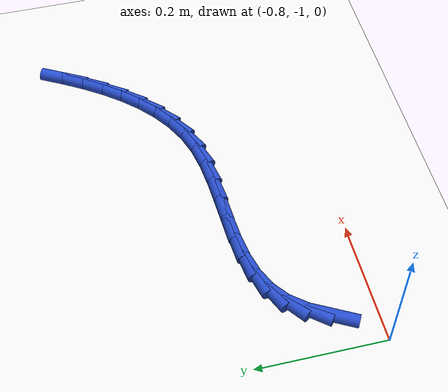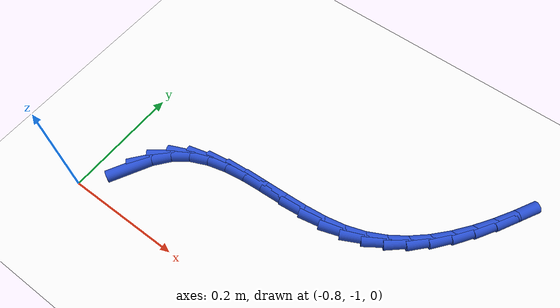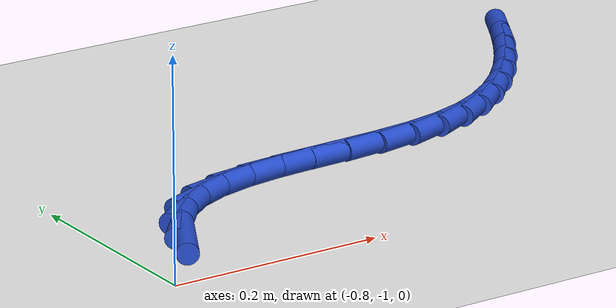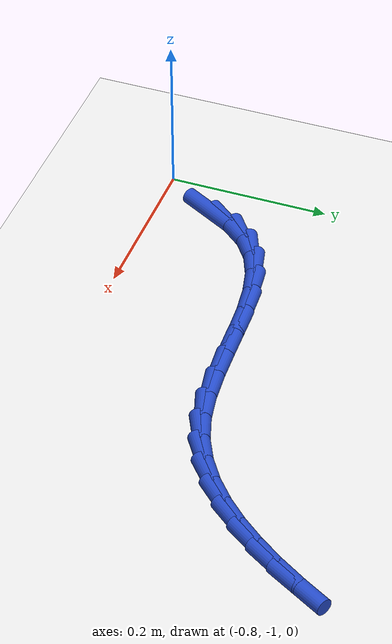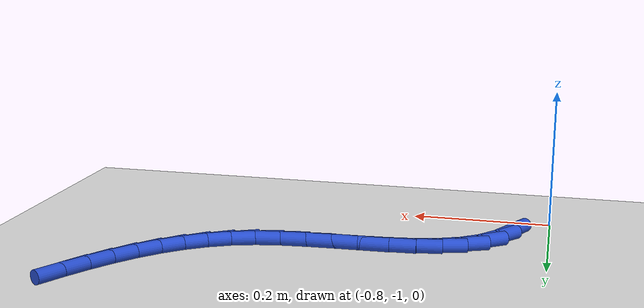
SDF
<sdf version="1.6">
 <world name="default">
  <model name="ground_plane">
   <static>1</static>
   <link name="link">
    <collision name="collision">
     <geometry><plane><normal>0 0 1</normal><size>100 100</size></plane></geometry>
     <surface><friction><ode><mu>100</mu><mu2>50</mu2></ode></friction></surface>
    </collision>
    <visual name="visual">
     <cast_shadows>0</cast_shadows>
     <geometry><plane><normal>0 0 1</normal><size>100 100</size></plane></geometry>
     <material>
      <script><uri>file://media/materials/scripts/gazebo.material</uri><name>Gazebo/WhiteGlow</name></script>
     </material>
    </visual>
   </link>
  </model>
  <model name="line">
   <link name="link_202">
    <pose>-0.7469728010920914 -0.9309215820515453 0.01 0 1.57 1.072168449013497</pose>
    <collision name="collision">
     <geometry><cylinder><radius>0.01</radius><length>0.08</length></cylinder></geometry>
    </collision>
    <visual name="visual">
     <material>
      <script><name>Gazebo/Blue</name><uri>file://media/materials/scripts/gazebo.material</uri></script>
     </material>
     <geometry><cylinder><radius>0.01</radius><length>0.08</length></cylinder></geometry>
    </visual>
   </link>
   <link name="link_203">
    <pose>-0.7298595424264955 -0.8994935543428468 0.01 0 1.57 0.8829990822931667</pose>
    <collision name="collision">
     <geometry><cylinder><radius>0.01</radius><length>0.08</length></cylinder></geometry>
    </collision>
    <visual name="visual">
     <material>
      <script><name>Gazebo/Blue</name><uri>file://media/materials/scripts/gazebo.material</uri></script>
     </material>
     <geometry><cylinder><radius>0.01</radius><length>0.08</length></cylinder></geometry>
    </visual>
   </link>
   <link name="link_204">
    <pose>-0.7087993132599762 -0.8738615991929233 0.01 0 1.57 0.6386512964273451</pose>
    <collision name="collision">
     <geometry><cylinder><radius>0.01</radius><length>0.08</length></cylinder></geometry>
    </collision>
    <visual name="visual">
     <material>
      <script><name>Gazebo/Blue</name><uri>file://media/materials/scripts/gazebo.material</uri></script>
     </material>
     <geometry><cylinder><radius>0.01</radius><length>0.08</length></cylinder></geometry>
    </visual>
   </link>
   <link name="link_205">
    <pose>-0.6833300855396663 -0.8549519819575729 0.01 0 1.57 0.41066211431108246</pose>
    <collision name="collision">
     <geometry><cylinder><radius>0.01</radius><length>0.08</length></cylinder></geometry>
    </collision>
    <visual name="visual">
     <material>
      <script><name>Gazebo/Blue</name><uri>file://media/materials/scripts/gazebo.material</uri></script>
     </material>
     <geometry><cylinder><radius>0.01</radius><length>0.08</length></cylinder></geometry>
    </visual>
   </link>
   <link name="link_206">
    <pose>-0.6538774563410743 -0.8421277587419058 0.01 0 1.57 0.2412864220059729</pose>
    <collision name="collision">
     <geometry><cylinder><radius>0.01</radius><length>0.08</length></cylinder></geometry>
    </collision>
    <visual name="visual">
     <material>
      <script><name>Gazebo/Blue</name><uri>file://media/materials/scripts/gazebo.material</uri></script>
     </material>
     <geometry><cylinder><radius>0.01</radius><length>0.08</length></cylinder></geometry>
    </visual>
   </link>
   <link name="link_207">
    <pose>-0.6212394101140698 -0.8340961689443732 0.01 0 1.57 0.12873634488388241</pose>
    <collision name="collision">
     <geometry><cylinder><radius>0.01</radius><length>0.08</length></cylinder></geometry>
    </collision>
    <visual name="visual">
     <material>
      <script><name>Gazebo/Blue</name><uri>file://media/materials/scripts/gazebo.material</uri></script>
     </material>
     <geometry><cylinder><radius>0.01</radius><length>0.08</length></cylinder></geometry>
    </visual>
   </link>
   <link name="link_208">
    <pose>-0.5862152065671888 -0.8295622060872292 0.01 0 1.57 0.06359270273104584</pose>
    <collision name="collision">
     <geometry><cylinder><radius>0.01</radius><length>0.08</length></cylinder></geometry>
    </collision>
    <visual name="visual">
     <material>
      <script><name>Gazebo/Blue</name><uri>file://media/materials/scripts/gazebo.material</uri></script>
     </material>
     <geometry><cylinder><radius>0.01</radius><length>0.08</length></cylinder></geometry>
    </visual>
   </link>
   <link name="link_209">
    <pose>-0.5496041054089711 -0.8272308636927287 0.01 0 1.57 0.0380505136785826</pose>
    <collision name="collision">
     <geometry><cylinder><radius>0.01</radius><length>0.08</length></cylinder></geometry>
    </collision>
    <visual name="visual">
     <material>
      <script><name>Gazebo/Blue</name><uri>file://media/materials/scripts/gazebo.material</uri></script>
     </material>
     <geometry><cylinder><radius>0.01</radius><length>0.08</length></cylinder></geometry>
    </visual>
   </link>
   <link name="link_210">
    <pose>-0.5122053663479528 -0.825807135283126 0.01 0 1.57 0.048404539563947475</pose>
    <collision name="collision">
     <geometry><cylinder><radius>0.01</radius><length>0.08</length></cylinder></geometry>
    </collision>
    <visual name="visual">
     <material>
      <script><name>Gazebo/Blue</name><uri>file://media/materials/scripts/gazebo.material</uri></script>
     </material>
     <geometry><cylinder><radius>0.01</radius><length>0.08</length></cylinder></geometry>
    </visual>
   </link>
   <link name="link_211">
    <pose>-0.4748182490926714 -0.8239960143806759 0.01 0 1.57 0.09522450872040678</pose>
    <collision name="collision">
     <geometry><cylinder><radius>0.01</radius><length>0.08</length></cylinder></geometry>
    </collision>
    <visual name="visual">
     <material>
      <script><name>Gazebo/Blue</name><uri>file://media/materials/scripts/gazebo.material</uri></script>
     </material>
     <geometry><cylinder><radius>0.01</radius><length>0.08</length></cylinder></geometry>
    </visual>
   </link>
   <link name="link_212">
    <pose>-0.43824201335166435 -0.8205024945076329 0.01 0 1.57 0.1829925416794582</pose>
    <collision name="collision">
     <geometry><cylinder><radius>0.01</radius><length>0.08</length></cylinder></geometry>
    </collision>
    <visual name="visual">
     <material>
      <script><name>Gazebo/Blue</name><uri>file://media/materials/scripts/gazebo.material</uri></script>
     </material>
     <geometry><cylinder><radius>0.01</radius><length>0.08</length></cylinder></geometry>
    </visual>
   </link>
   <link name="link_213">
    <pose>-0.40327591883346897 -0.8140315691862514 0.01 0 1.57 0.31574857564975456</pose>
    <collision name="collision">
     <geometry><cylinder><radius>0.01</radius><length>0.08</length></cylinder></geometry>
    </collision>
    <visual name="visual">
     <material>
      <script><name>Gazebo/Blue</name><uri>file://media/materials/scripts/gazebo.material</uri></script>
     </material>
     <geometry><cylinder><radius>0.01</radius><length>0.08</length></cylinder></geometry>
    </visual>
   </link>
   <link name="link_214">
    <pose>-0.3706672616977401 -0.8033790479495542 0.01 0 1.57 0.463057989945182</pose>
    <collision name="collision">
     <geometry><cylinder><radius>0.01</radius><length>0.08</length></cylinder></geometry>
    </collision>
    <visual name="visual">
     <material>
      <script><name>Gazebo/Blue</name><uri>file://media/materials/scripts/gazebo.material</uri></script>
     </material>
     <geometry><cylinder><radius>0.01</radius><length>0.08</length></cylinder></geometry>
    </visual>
   </link>
   <link name="link_215">
    <pose>-0.34058117807010213 -0.7883581737633462 0.01 0 1.57 0.5986019679717779</pose>
    <collision name="collision">
     <geometry><cylinder><radius>0.01</radius><length>0.08</length></cylinder></geometry>
    </collision>
    <visual name="visual">
     <material>
      <script><name>Gazebo/Blue</name><uri>file://media/materials/scripts/gazebo.material</uri></script>
     </material>
     <geometry><cylinder><radius>0.01</radius><length>0.08</length></cylinder></geometry>
    </visual>
   </link>
   <link name="link_216">
    <pose>-0.3128173683388472 -0.7694208568240317 0.01 0 1.57 0.7177341758464238</pose>
    <collision name="collision">
     <geometry><cylinder><radius>0.01</radius><length>0.08</length></cylinder></geometry>
    </collision>
    <visual name="visual">
     <material>
      <script><name>Gazebo/Blue</name><uri>file://media/materials/scripts/gazebo.material</uri></script>
     </material>
     <geometry><cylinder><radius>0.01</radius><length>0.08</length></cylinder></geometry>
    </visual>
   </link>
   <link name="link_217">
    <pose>-0.2871698825510575 -0.7470288823550073 0.01 0 1.57 0.8189293466281988</pose>
    <collision name="collision">
     <geometry><cylinder><radius>0.01</radius><length>0.08</length></cylinder></geometry>
    </collision>
    <visual name="visual">
     <material>
      <script><name>Gazebo/Blue</name><uri>file://media/materials/scripts/gazebo.material</uri></script>
     </material>
     <geometry><cylinder><radius>0.01</radius><length>0.08</length></cylinder></geometry>
    </visual>
   </link>
   <link name="link_218">
    <pose>-0.2634327707538161 -0.7216440355796705 0.01 0 1.57 0.9026439057471588</pose>
    <collision name="collision">
     <geometry><cylinder><radius>0.01</radius><length>0.08</length></cylinder></geometry>
    </collision>
    <visual name="visual">
     <material>
      <script><name>Gazebo/Blue</name><uri>file://media/materials/scripts/gazebo.material</uri></script>
     </material>
     <geometry><cylinder><radius>0.01</radius><length>0.08</length></cylinder></geometry>
    </visual>
   </link>
   <link name="link_219">
    <pose>-0.24140008299420593 -0.6937281017214186 0.01 0 1.57 0.9703373526861576</pose>
    <collision name="collision">
     <geometry><cylinder><radius>0.01</radius><length>0.08</length></cylinder></geometry>
    </collision>
    <visual name="visual">
     <material>
      <script><name>Gazebo/Blue</name><uri>file://media/materials/scripts/gazebo.material</uri></script>
     </material>
     <geometry><cylinder><radius>0.01</radius><length>0.08</length></cylinder></geometry>
    </visual>
   </link>
   <link name="link_220">
    <pose>-0.22086586931931018 -0.6637428660036485 0.01 0 1.57 1.0237461183367125</pose>
    <collision name="collision">
     <geometry><cylinder><radius>0.01</radius><length>0.08</length></cylinder></geometry>
    </collision>
    <visual name="visual">
     <material>
      <script><name>Gazebo/Blue</name><uri>file://media/materials/scripts/gazebo.material</uri></script>
     </material>
     <geometry><cylinder><radius>0.01</radius><length>0.08</length></cylinder></geometry>
    </visual>
   </link>
   <link name="link_221">
    <pose>-0.2016241797762118 -0.6321501136497578 0.01 0 1.57 1.0644667991344678</pose>
    <collision name="collision">
     <geometry><cylinder><radius>0.01</radius><length>0.08</length></cylinder></geometry>
    </collision>
    <visual name="visual">
     <material>
      <script><name>Gazebo/Blue</name><uri>file://media/materials/scripts/gazebo.material</uri></script>
     </material>
     <geometry><cylinder><radius>0.01</radius><length>0.08</length></cylinder></geometry>
    </visual>
   </link>
  </model>
 </world>
</sdf>
